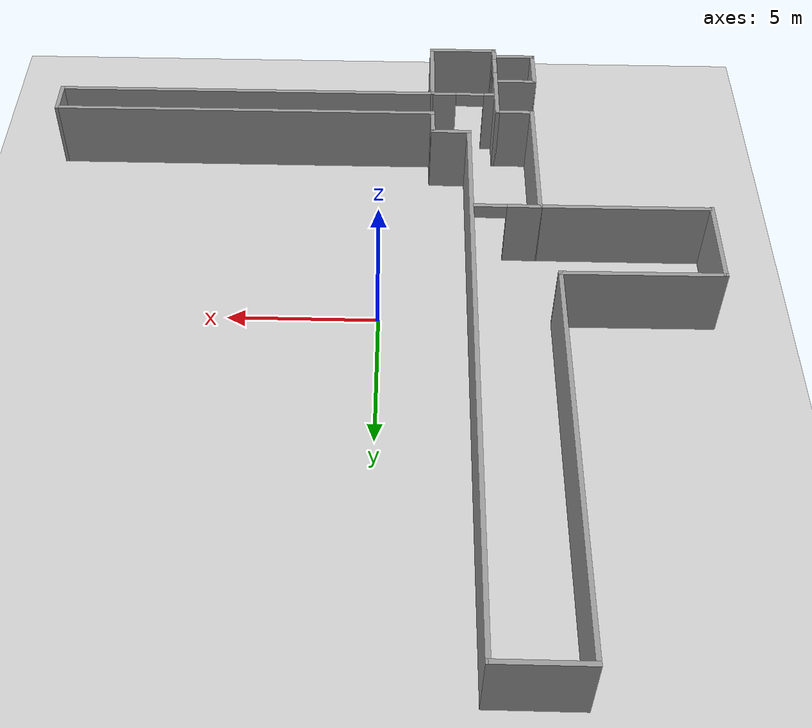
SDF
<?xml version="1.0" ?>
<sdf version="1.4">
  <world name="default">
    <include>
      <uri>model://ground_plane</uri>
    </include>
    <include>
      <uri>model://sun</uri>
    </include>
    <include>
      <uri>model://singtel_floorplan/singtel_floor2</uri>
      <name>singtel_floor2</name>
    </include>
  </world>
</sdf>

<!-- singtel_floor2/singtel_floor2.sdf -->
<sdf version='1.6'>
  <model name='singtel_floor2'>
    <pose frame=''>0.346757 1.03592 0 0 -0 0</pose>
    <link name='Wall_0'>
      <collision name='Wall_0_Collision'>
        <geometry>
          <box>
            <size>13.5 0.15 2.5</size>
          </box>
        </geometry>
        <pose frame=''>0 0 1.25 0 -0 0</pose>
      </collision>
      <visual name='Wall_0_Visual'>
        <pose frame=''>0 0 1.25 0 -0 0</pose>
        <geometry>
          <box>
            <size>13.5 0.15 2.5</size>
          </box>
        </geometry>
        <material>
          <script>
            <uri>file://media/materials/scripts/gazebo.material</uri>
            <name>Gazebo/Grey</name>
          </script>
          <ambient>1 1 1 1</ambient>
        </material>
        <meta>
          <layer>0</layer>
        </meta>
      </visual>
      <pose frame=''>4.56088 -9.95104 0 0 -0 0</pose>
    </link>
    <link name='Wall_10'>
      <pose frame=''>-4.42281 -10.7716 0 0 -0 -1.5708</pose>
      <visual name='Wall_10_Visual_0'>
        <pose frame=''>-0.699586 0 1.25 0 -0 0</pose>
        <geometry>
          <box>
            <size>2.35083 0.15 2.5</size>
          </box>
        </geometry>
        <material>
          <script>
            <uri>file://media/materials/scripts/gazebo.material</uri>
            <name>Gazebo/Grey</name>
          </script>
          <ambient>1 1 1 1</ambient>
        </material>
        <meta>
          <layer>0</layer>
        </meta>
      </visual>
      <collision name='Wall_10_Collision_0'>
        <geometry>
          <box>
            <size>2.35083 0.15 2.5</size>
          </box>
        </geometry>
        <pose frame=''>-0.699586 0 1.25 0 -0 0</pose>
      </collision>
      <visual name='Wall_10_Visual_1'>
        <pose frame=''>1.57041 0 1.25 0 -0 0</pose>
        <geometry>
          <box>
            <size>0.609171 0.15 2.5</size>
          </box>
        </geometry>
        <material>
          <script>
            <uri>file://media/materials/scripts/gazebo.material</uri>
            <name>Gazebo/Grey</name>
          </script>
          <ambient>1 1 1 1</ambient>
        </material>
        <meta>
          <layer>0</layer>
        </meta>
      </visual>
      <collision name='Wall_10_Collision_1'>
        <geometry>
          <box>
            <size>0.609171 0.15 2.5</size>
          </box>
        </geometry>
        <pose frame=''>1.57041 0 1.25 0 -0 0</pose>
      </collision>
      <visual name='Wall_10_Visual_2'>
        <pose frame=''>0.870829 0 2.25 0 -0 0</pose>
        <geometry>
          <box>
            <size>0.79 0.15 0.5</size>
          </box>
        </geometry>
        <material>
          <script>
            <uri>file://media/materials/scripts/gazebo.material</uri>
            <name>Gazebo/Grey</name>
          </script>
          <ambient>1 1 1 1</ambient>
        </material>
        <meta>
          <layer>0</layer>
        </meta>
      </visual>
      <collision name='Wall_10_Collision_2'>
        <geometry>
          <box>
            <size>0.79 0.15 0.5</size>
          </box>
        </geometry>
        <pose frame=''>0.870829 0 2.25 0 -0 0</pose>
      </collision>
    </link>
    <link name='Wall_12'>
      <collision name='Wall_12_Collision'>
        <geometry>
          <box>
            <size>2.45878 0.15 2.5</size>
          </box>
        </geometry>
        <pose frame=''>0 0 1.25 0 -0 0</pose>
      </collision>
      <visual name='Wall_12_Visual'>
        <pose frame=''>0 0 1.25 0 -0 0</pose>
        <geometry>
          <box>
            <size>2.45878 0.15 2.5</size>
          </box>
        </geometry>
        <material>
          <script>
            <uri>file://media/materials/scripts/gazebo.material</uri>
            <name>Gazebo/Grey</name>
          </script>
          <ambient>1 1 1 1</ambient>
        </material>
        <meta>
          <layer>0</layer>
        </meta>
      </visual>
      <pose frame=''>-3.26847 -12.5613 0 0 -0 0.008904</pose>
    </link>
    <link name='Wall_14'>
      <collision name='Wall_14_Collision'>
        <geometry>
          <box>
            <size>1.25 0.15 2.5</size>
          </box>
        </geometry>
        <pose frame=''>0 0 1.25 0 -0 0</pose>
      </collision>
      <visual name='Wall_14_Visual'>
        <pose frame=''>0 0 1.25 0 -0 0</pose>
        <geometry>
          <box>
            <size>1.25 0.15 2.5</size>
          </box>
        </geometry>
        <material>
          <script>
            <uri>file://media/materials/scripts/gazebo.material</uri>
            <name>Gazebo/Grey</name>
          </script>
          <ambient>1 1 1 1</ambient>
        </material>
        <meta>
          <layer>0</layer>
        </meta>
      </visual>
      <pose frame=''>-4.97281 -8.9716 0 0 -0 3.14159</pose>
    </link>
    <link name='Wall_16'>
      <collision name='Wall_16_Collision'>
        <geometry>
          <box>
            <size>5.075 0.15 2.5</size>
          </box>
        </geometry>
        <pose frame=''>0 0 1.25 0 -0 0</pose>
      </collision>
      <visual name='Wall_16_Visual'>
        <pose frame=''>0 0 1.25 0 -0 0</pose>
        <geometry>
          <box>
            <size>5.075 0.15 2.5</size>
          </box>
        </geometry>
        <material>
          <script>
            <uri>file://media/materials/scripts/gazebo.material</uri>
            <name>Gazebo/Grey</name>
          </script>
          <ambient>1 1 1 1</ambient>
        </material>
        <meta>
          <layer>0</layer>
        </meta>
      </visual>
      <pose frame=''>-5.64868 -6.5083 0 0 -0 -1.5708</pose>
    </link>
    <link name='Wall_2'>
      <collision name='Wall_2_Collision'>
        <geometry>
          <box>
            <size>13.5 0.15 2.5</size>
          </box>
        </geometry>
        <pose frame=''>0 0 1.25 0 -0 0</pose>
      </collision>
      <visual name='Wall_2_Visual'>
        <pose frame=''>0 0 1.25 0 -0 0</pose>
        <geometry>
          <box>
            <size>13.5 0.15 2.5</size>
          </box>
        </geometry>
        <material>
          <script>
            <uri>file://media/materials/scripts/gazebo.material</uri>
            <name>Gazebo/Grey</name>
          </script>
          <ambient>1 1 1 1</ambient>
        </material>
        <meta>
          <layer>0</layer>
        </meta>
      </visual>
      <pose frame=''>4.56088 -8.84917 0 0 -0 0</pose>
    </link>
    <link name='Wall_20'>
      <collision name='Wall_20_Collision'>
        <geometry>
          <box>
            <size>5.75 0.15 2.5</size>
          </box>
        </geometry>
        <pose frame=''>0 0 1.25 0 -0 0</pose>
      </collision>
      <visual name='Wall_20_Visual'>
        <pose frame=''>0 0 1.25 0 -0 0</pose>
        <geometry>
          <box>
            <size>5.75 0.15 2.5</size>
          </box>
        </geometry>
        <material>
          <script>
            <uri>file://media/materials/scripts/gazebo.material</uri>
            <name>Gazebo/Grey</name>
          </script>
          <ambient>1 1 1 1</ambient>
        </material>
        <meta>
          <layer>0</layer>
        </meta>
      </visual>
      <pose frame=''>-8.44868 -4.0458 0 0 -0 3.14159</pose>
    </link>
    <link name='Wall_22'>
      <pose frame=''>-4.57368 -4.0458 0 0 -0 0</pose>
      <visual name='Wall_22_Visual_0'>
        <pose frame=''>-0.563689 0 1.25 0 -0 0</pose>
        <geometry>
          <box>
            <size>1.17262 0.15 2.5</size>
          </box>
        </geometry>
        <material>
          <script>
            <uri>file://media/materials/scripts/gazebo.material</uri>
            <name>Gazebo/Grey</name>
          </script>
          <ambient>1 1 1 1</ambient>
        </material>
        <meta>
          <layer>0</layer>
        </meta>
      </visual>
      <collision name='Wall_22_Collision_0'>
        <geometry>
          <box>
            <size>1.17262 0.15 2.5</size>
          </box>
        </geometry>
        <pose frame=''>-0.563689 0 1.25 0 -0 0</pose>
      </collision>
      <visual name='Wall_22_Visual_1'>
        <pose frame=''>1.14665 0 1.25 0 -0 0</pose>
        <geometry>
          <box>
            <size>0.006696 0.15 2.5</size>
          </box>
        </geometry>
        <material>
          <script>
            <uri>file://media/materials/scripts/gazebo.material</uri>
            <name>Gazebo/Grey</name>
          </script>
          <ambient>1 1 1 1</ambient>
        </material>
        <meta>
          <layer>0</layer>
        </meta>
      </visual>
      <collision name='Wall_22_Collision_1'>
        <geometry>
          <box>
            <size>0.006696 0.15 2.5</size>
          </box>
        </geometry>
        <pose frame=''>1.14665 0 1.25 0 -0 0</pose>
      </collision>
      <visual name='Wall_22_Visual_2'>
        <pose frame=''>0.582964 0 2.25 0 -0 0</pose>
        <geometry>
          <box>
            <size>1.12068 0.15 0.5</size>
          </box>
        </geometry>
        <material>
          <script>
            <uri>file://media/materials/scripts/gazebo.material</uri>
            <name>Gazebo/Grey</name>
          </script>
          <ambient>1 1 1 1</ambient>
        </material>
        <meta>
          <layer>0</layer>
        </meta>
      </visual>
      <collision name='Wall_22_Collision_2'>
        <geometry>
          <box>
            <size>1.12068 0.15 0.5</size>
          </box>
        </geometry>
        <pose frame=''>0.582964 0 2.25 0 -0 0</pose>
      </collision>
    </link>
    <link name='Wall_24'>
      <collision name='Wall_24_Collision'>
        <geometry>
          <box>
            <size>3.15 0.15 2.5</size>
          </box>
        </geometry>
        <pose frame=''>0 0 1.25 0 -0 0</pose>
      </collision>
      <visual name='Wall_24_Visual'>
        <pose frame=''>0 0 1.25 0 -0 0</pose>
        <geometry>
          <box>
            <size>3.15 0.15 2.5</size>
          </box>
        </geometry>
        <material>
          <script>
            <uri>file://media/materials/scripts/gazebo.material</uri>
            <name>Gazebo/Grey</name>
          </script>
          <ambient>1 1 1 1</ambient>
        </material>
        <meta>
          <layer>0</layer>
        </meta>
      </visual>
      <pose frame=''>-11.3422 -2.55555 0 0 -0 -1.5708</pose>
    </link>
    <link name='Wall_26'>
      <collision name='Wall_26_Collision'>
        <geometry>
          <box>
            <size>5.37794 0.15 2.5</size>
          </box>
        </geometry>
        <pose frame=''>0 0 1.25 0 -0 0</pose>
      </collision>
      <visual name='Wall_26_Visual'>
        <pose frame=''>0 0 1.25 0 -0 0</pose>
        <geometry>
          <box>
            <size>5.37794 0.15 2.5</size>
          </box>
        </geometry>
        <material>
          <script>
            <uri>file://media/materials/scripts/gazebo.material</uri>
            <name>Gazebo/Grey</name>
          </script>
          <ambient>1 1 1 1</ambient>
        </material>
        <meta>
          <layer>0</layer>
        </meta>
      </visual>
      <pose frame=''>-8.73885 -0.99116 0 0 -0 -3.13565</pose>
    </link>
    <link name='Wall_29'>
      <collision name='Wall_29_Collision'>
        <geometry>
          <box>
            <size>1.1 0.15 2.5</size>
          </box>
        </geometry>
        <pose frame=''>0 0 1.25 0 -0 0</pose>
      </collision>
      <visual name='Wall_29_Visual'>
        <pose frame=''>0 0 1.25 0 -0 0</pose>
        <geometry>
          <box>
            <size>1.1 0.15 2.5</size>
          </box>
        </geometry>
        <material>
          <script>
            <uri>file://media/materials/scripts/gazebo.material</uri>
            <name>Gazebo/Grey</name>
          </script>
          <ambient>1 1 1 1</ambient>
        </material>
        <meta>
          <layer>0</layer>
        </meta>
      </visual>
      <pose frame=''>-2.11412 -8.37417 0 0 -0 1.5708</pose>
    </link>
    <link name='Wall_32'>
      <collision name='Wall_32_Collision'>
        <geometry>
          <box>
            <size>13.6 0.15 2.5</size>
          </box>
        </geometry>
        <pose frame=''>0 0 1.25 0 -0 0</pose>
      </collision>
      <visual name='Wall_32_Visual'>
        <pose frame=''>0 0 1.25 0 -0 0</pose>
        <geometry>
          <box>
            <size>13.6 0.15 2.5</size>
          </box>
        </geometry>
        <material>
          <script>
            <uri>file://media/materials/scripts/gazebo.material</uri>
            <name>Gazebo/Grey</name>
          </script>
          <ambient>1 1 1 1</ambient>
        </material>
        <meta>
          <layer>0</layer>
        </meta>
      </visual>
      <pose frame=''>-6.12489 5.74937 0 0 -0 1.5708</pose>
    </link>
    <link name='Wall_4'>
      <collision name='Wall_4_Collision'>
        <geometry>
          <box>
            <size>1.25 0.15 2.5</size>
          </box>
        </geometry>
        <pose frame=''>0 0 1.25 0 -0 0</pose>
      </collision>
      <visual name='Wall_4_Visual'>
        <pose frame=''>0 0 1.25 0 -0 0</pose>
        <geometry>
          <box>
            <size>1.25 0.15 2.5</size>
          </box>
        </geometry>
        <material>
          <script>
            <uri>file://media/materials/scripts/gazebo.material</uri>
            <name>Gazebo/Grey</name>
          </script>
          <ambient>1 1 1 1</ambient>
        </material>
        <meta>
          <layer>0</layer>
        </meta>
      </visual>
      <pose frame=''>11.3532 -9.39917 0 0 -0 -1.5708</pose>
    </link>
    <link name='Wall_43'>
      <collision name='Wall_43_Collision'>
        <geometry>
          <box>
            <size>20.5 0.15 2.5</size>
          </box>
        </geometry>
        <pose frame=''>0 0 1.25 0 -0 0</pose>
      </collision>
      <visual name='Wall_43_Visual'>
        <pose frame=''>0 0 1.25 0 -0 0</pose>
        <geometry>
          <box>
            <size>20.5 0.15 2.5</size>
          </box>
        </geometry>
        <material>
          <script>
            <uri>file://media/materials/scripts/gazebo.material</uri>
            <name>Gazebo/Grey</name>
          </script>
          <ambient>1 1 1 1</ambient>
        </material>
        <meta>
          <layer>0</layer>
        </meta>
      </visual>
      <pose frame=''>-3.37633 2.39726 0 0 -0 -1.5708</pose>
    </link>
    <link name='Wall_47'>
      <collision name='Wall_47_Collision'>
        <geometry>
          <box>
            <size>1.4 0.15 2.5</size>
          </box>
        </geometry>
        <pose frame=''>0 0 1.25 0 -0 0</pose>
      </collision>
      <visual name='Wall_47_Visual'>
        <pose frame=''>0 0 1.25 0 -0 0</pose>
        <geometry>
          <box>
            <size>1.4 0.15 2.5</size>
          </box>
        </geometry>
        <material>
          <script>
            <uri>file://media/materials/scripts/gazebo.material</uri>
            <name>Gazebo/Grey</name>
          </script>
          <ambient>1 1 1 1</ambient>
        </material>
        <meta>
          <layer>0</layer>
        </meta>
      </visual>
      <pose frame=''>-2.75133 -7.83758 0 0 -0 0</pose>
    </link>
    <link name='Wall_50'>
      <collision name='Wall_50_Collision'>
        <geometry>
          <box>
            <size>2.9 0.15 2.5</size>
          </box>
        </geometry>
        <pose frame=''>0 0 1.25 0 -0 0</pose>
      </collision>
      <visual name='Wall_50_Visual'>
        <pose frame=''>0 0 1.25 0 -0 0</pose>
        <geometry>
          <box>
            <size>2.9 0.15 2.5</size>
          </box>
        </geometry>
        <material>
          <script>
            <uri>file://media/materials/scripts/gazebo.material</uri>
            <name>Gazebo/Grey</name>
          </script>
          <ambient>1 1 1 1</ambient>
        </material>
        <meta>
          <layer>0</layer>
        </meta>
      </visual>
      <pose frame=''>-4.75133 12.5723 0 0 -0 3.14159</pose>
    </link>
    <link name='Wall_53'>
      <pose frame=''>-3.23308 -9.94786 0 0 -0 -0.002848</pose>
      <visual name='Wall_53_Visual_0'>
        <pose frame=''>-0.962967 0 1.25 0 -0 0</pose>
        <geometry>
          <box>
            <size>0.461983 0.15 2.5</size>
          </box>
        </geometry>
        <material>
          <script>
            <uri>file://media/materials/scripts/gazebo.material</uri>
            <name>Gazebo/Grey</name>
          </script>
          <ambient>1 1 1 1</ambient>
        </material>
        <meta>
          <layer>0</layer>
        </meta>
      </visual>
      <collision name='Wall_53_Collision_0'>
        <geometry>
          <box>
            <size>0.461983 0.15 2.5</size>
          </box>
        </geometry>
        <pose frame=''>-0.962967 0 1.25 0 -0 0</pose>
      </collision>
      <visual name='Wall_53_Visual_1'>
        <pose frame=''>0.730991 0 1.25 0 -0 0</pose>
        <geometry>
          <box>
            <size>0.925934 0.15 2.5</size>
          </box>
        </geometry>
        <material>
          <script>
            <uri>file://media/materials/scripts/gazebo.material</uri>
            <name>Gazebo/Grey</name>
          </script>
          <ambient>1 1 1 1</ambient>
        </material>
        <meta>
          <layer>0</layer>
        </meta>
      </visual>
      <collision name='Wall_53_Collision_1'>
        <geometry>
          <box>
            <size>0.925934 0.15 2.5</size>
          </box>
        </geometry>
        <pose frame=''>0.730991 0 1.25 0 -0 0</pose>
      </collision>
      <visual name='Wall_53_Visual_2'>
        <pose frame=''>-0.231976 0 2.25 0 -0 0</pose>
        <geometry>
          <box>
            <size>1 0.15 0.5</size>
          </box>
        </geometry>
        <material>
          <script>
            <uri>file://media/materials/scripts/gazebo.material</uri>
            <name>Gazebo/Grey</name>
          </script>
          <ambient>1 1 1 1</ambient>
        </material>
        <meta>
          <layer>0</layer>
        </meta>
      </visual>
      <collision name='Wall_53_Collision_2'>
        <geometry>
          <box>
            <size>1 0.15 0.5</size>
          </box>
        </geometry>
        <pose frame=''>-0.231976 0 2.25 0 -0 0</pose>
      </collision>
    </link>
    <link name='Wall_55'>
      <collision name='Wall_55_Collision'>
        <geometry>
          <box>
            <size>1.63 0.15 2.5</size>
          </box>
        </geometry>
        <pose frame=''>0 0 1.25 0 -0 0</pose>
      </collision>
      <visual name='Wall_55_Visual'>
        <pose frame=''>0 0 1.25 0 -0 0</pose>
        <geometry>
          <box>
            <size>1.63 0.15 2.5</size>
          </box>
        </geometry>
        <material>
          <script>
            <uri>file://media/materials/scripts/gazebo.material</uri>
            <name>Gazebo/Grey</name>
          </script>
          <ambient>1 1 1 1</ambient>
        </material>
        <meta>
          <layer>0</layer>
        </meta>
      </visual>
      <pose frame=''>-5.83199 -11.4884 0 0 -0 -1.5708</pose>
    </link>
    <link name='Wall_57'>
      <collision name='Wall_57_Collision'>
        <geometry>
          <box>
            <size>1.41 0.15 2.5</size>
          </box>
        </geometry>
        <pose frame=''>0 0 1.25 0 -0 0</pose>
      </collision>
      <visual name='Wall_57_Visual'>
        <pose frame=''>0 0 1.25 0 -0 0</pose>
        <geometry>
          <box>
            <size>1.41 0.15 2.5</size>
          </box>
        </geometry>
        <material>
          <script>
            <uri>file://media/materials/scripts/gazebo.material</uri>
            <name>Gazebo/Grey</name>
          </script>
          <ambient>1 1 1 1</ambient>
        </material>
        <meta>
          <layer>0</layer>
        </meta>
      </visual>
      <pose frame=''>-5.20199 -10.7484 0 0 -0 0</pose>
    </link>
    <link name='Wall_59'>
      <collision name='Wall_59_Collision'>
        <geometry>
          <box>
            <size>1.41 0.15 2.5</size>
          </box>
        </geometry>
        <pose frame=''>0 0 1.25 0 -0 0</pose>
      </collision>
      <visual name='Wall_59_Visual'>
        <pose frame=''>0 0 1.25 0 -0 0</pose>
        <geometry>
          <box>
            <size>1.41 0.15 2.5</size>
          </box>
        </geometry>
        <material>
          <script>
            <uri>file://media/materials/scripts/gazebo.material</uri>
            <name>Gazebo/Grey</name>
          </script>
          <ambient>1 1 1 1</ambient>
        </material>
        <meta>
          <layer>0</layer>
        </meta>
      </visual>
      <pose frame=''>-5.20199 -12.2259 0 0 -0 0</pose>
    </link>
    <link name='Wall_6'>
      <collision name='Wall_6_Collision'>
        <geometry>
          <box>
            <size>2.75 0.15 2.5</size>
          </box>
        </geometry>
        <pose frame=''>0 0 1.25 0 -0 0</pose>
      </collision>
      <visual name='Wall_6_Visual'>
        <pose frame=''>0 0 1.25 0 -0 0</pose>
        <geometry>
          <box>
            <size>2.75 0.15 2.5</size>
          </box>
        </geometry>
        <material>
          <script>
            <uri>file://media/materials/scripts/gazebo.material</uri>
            <name>Gazebo/Grey</name>
          </script>
          <ambient>1 1 1 1</ambient>
        </material>
        <meta>
          <layer>0</layer>
        </meta>
      </visual>
      <pose frame=''>-2.11412 -11.251 0 0 -0 -1.5708</pose>
    </link>
    <static>1</static>
  </model>
</sdf>
